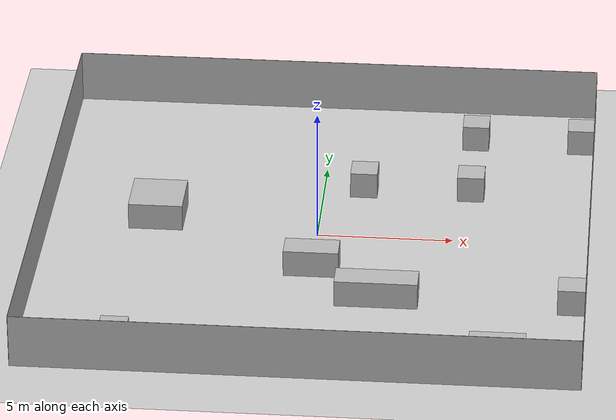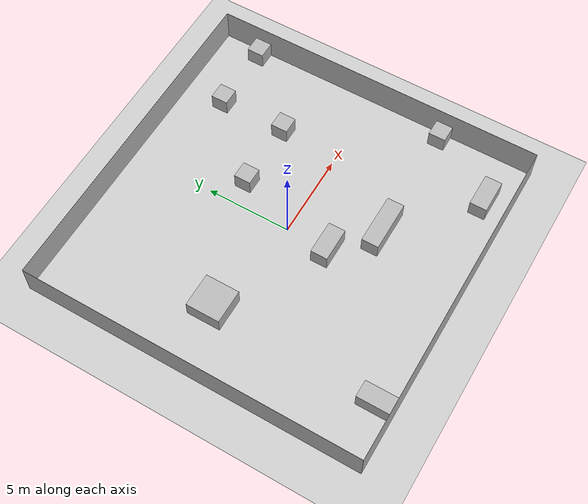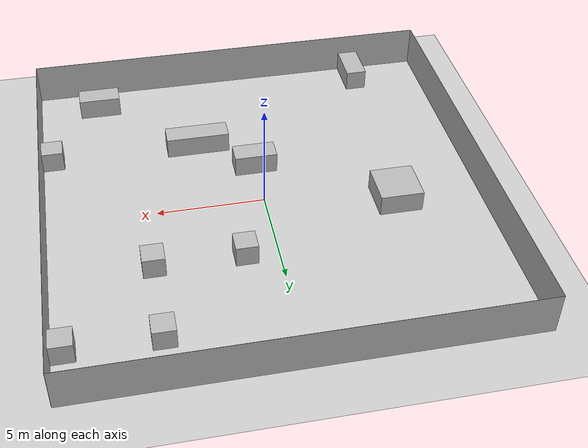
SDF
<sdf version="1.8">
 <world name="default">
  <physics name="1ms" type="ignored">
   <max_step_size>0.001</max_step_size>
   <real_time_factor>1</real_time_factor>
   <real_time_update_rate>1000</real_time_update_rate>
  </physics>
  <plugin name="ignition::gazebo::systems::Physics" filename="ignition-gazebo-physics-system"/>
  <plugin name="ignition::gazebo::systems::UserCommands" filename="ignition-gazebo-user-commands-system"/>
  <plugin name="ignition::gazebo::systems::SceneBroadcaster" filename="ignition-gazebo-scene-broadcaster-system"/>
  <plugin name="ignition::gazebo::systems::Contact" filename="ignition-gazebo-contact-system"/>
  <light name="sun" type="directional">
   <pose>0 0 10 0 -0 0</pose>
   <diffuse>0.8 0.8 0.8 1</diffuse>
   <specular>0.2 0.2 0.2 1</specular>
   <attenuation>
    <range>1000</range>
    <constant>0.90000000000000002</constant>
    <linear>0.01</linear>
    <quadratic>0.001</quadratic>
   </attenuation>
   <direction>-0.5 0.1 -0.9</direction>
   <spot><inner_angle>0</inner_angle><outer_angle>0</outer_angle><falloff>0</falloff></spot>
  </light>
  <gravity>0 0 -9.8</gravity>
  <magnetic_field>6e-06 2.3e-05 -4.2e-05</magnetic_field>
  <atmosphere type="adiabatic"/>
  <scene><ambient>0.4 0.4 0.4 1</ambient><background>0.7 0.7 0.7 1</background><shadows>1</shadows></scene>
  <model name="ground_plane">
   <static>1</static>
   <link name="link">
    <collision name="collision">
     <geometry><plane><normal>0 0 1</normal><size>100 100</size></plane></geometry>
    </collision>
    <visual name="visual">
     <geometry><plane><normal>0 0 1</normal><size>100 100</size></plane></geometry>
     <material>
      <ambient>0.8 0.8 0.8 1</ambient>
      <diffuse>0.8 0.8 0.8 1</diffuse>
      <specular>0.8 0.8 0.8 1</specular>
     </material>
     <plugin name="__default__" filename="__default__"/>
    </visual>
   </link>
   <plugin name="__default__" filename="__default__"/>
  </model>
  <model name="border">
   <pose>0 0 1 0 -0 0</pose>
   <static>1</static>
   <link name="wall1">
    <pose>-10.005 0 0 0 -0 0</pose>
    <collision name="wall1_collision"><geometry><box><size>0.01 20 2</size></box></geometry></collision>
    <visual name="wall1_visual"><geometry><box><size>0.01 20 2</size></box></geometry></visual>
    <static>1</static>
   </link>
   <link name="wall2">
    <pose>10.005 0 0 0 -0 0</pose>
    <collision name="wall2_collision"><geometry><box><size>0.01 20 2</size></box></geometry></collision>
    <visual name="wall2_visual"><geometry><box><size>0.01 20 2</size></box></geometry></visual>
    <static>1</static>
   </link>
   <link name="wall3">
    <pose>0 10.005 0 0 -0 0</pose>
    <collision name="wall3_collision"><geometry><box><size>20 0.01 2</size></box></geometry></collision>
    <visual name="wall3_visual"><geometry><box><size>20 0.01 2</size></box></geometry></visual>
    <static>1</static>
   </link>
   <link name="wall4">
    <pose>0 -10.005 0 0 -0 0</pose>
    <collision name="wall4_collision"><geometry><box><size>20 0.01 2</size></box></geometry></collision>
    <visual name="wall4_visual"><geometry><box><size>20 0.01 2</size></box></geometry></visual>
    <static>1</static>
   </link>
  </model>
  <model name="obstacles">
   <pose>0 0 0.5 0 -0 0</pose>
   <static>1</static>
   <link name="wall1">
    <pose>-6.5 -9 0 0 -0 0</pose>
    <collision name="wall1_collision"><geometry><box><size>1 2 1</size></box></geometry></collision>
    <visual name="wall1_visual"><geometry><box><size>1 2 1</size></box></geometry></visual>
    <static>1</static>
   </link>
   <link name="wall5">
    <pose>7 -8.5 0 0 -0 0</pose>
    <collision name="wall5_collision"><geometry><box><size>2 1 1</size></box></geometry></collision>
    <visual name="wall5_visual"><geometry><box><size>2 1 1</size></box></geometry></visual>
    <static>1</static>
   </link>
   <link name="wall9">
    <pose>-6 1 0 0 -0 0</pose>
    <collision name="wall9_collision"><geometry><box><size>2 2 1</size></box></geometry></collision>
    <visual name="wall9_visual"><geometry><box><size>2 2 1</size></box></geometry></visual>
    <static>1</static>
   </link>
   <link name="wall13">
    <pose>0 -2.5 0 0 -0 0</pose>
    <collision name="wall13_collision"><geometry><box><size>2 1 1</size></box></geometry></collision>
    <visual name="wall13_visual"><geometry><box><size>2 1 1</size></box></geometry></visual>
    <static>1</static>
   </link>
   <link name="wall17">
    <pose>2.5 -4.5 0 0 -0 0</pose>
    <collision name="wall17_collision"><geometry><box><size>3 1 1</size></box></geometry></collision>
    <visual name="wall17_visual"><geometry><box><size>3 1 1</size></box></geometry></visual>
    <static>1</static>
   </link>
   <link name="wall21">
    <pose>9.5 -4.5 0 0 -0 0</pose>
    <collision name="wall21_collision"><geometry><box><size>1 1 1</size></box></geometry></collision>
    <visual name="wall21_visual"><geometry><box><size>1 1 1</size></box></geometry></visual>
    <static>1</static>
   </link>
   <link name="wall25">
    <pose>1.5 3.5 0 0 -0 0</pose>
    <collision name="wall25_collision"><geometry><box><size>1 1 1</size></box></geometry></collision>
    <visual name="wall25_visual"><geometry><box><size>1 1 1</size></box></geometry></visual>
    <static>1</static>
   </link>
   <link name="wall29">
    <pose>5.5 7.5 0 0 -0 0</pose>
    <collision name="wall29_collision"><geometry><box><size>1 1 1</size></box></geometry></collision>
    <visual name="wall29_visual"><geometry><box><size>1 1 1</size></box></geometry></visual>
    <static>1</static>
   </link>
   <link name="wall33">
    <pose>5.5 3.5 0 0 -0 0</pose>
    <collision name="wall33_collision"><geometry><box><size>1 1 1</size></box></geometry></collision>
    <visual name="wall33_visual"><geometry><box><size>1 1 1</size></box></geometry></visual>
    <static>1</static>
   </link>
   <link name="wall37">
    <pose>9.5 7.5 0 0 -0 0</pose>
    <collision name="wall37_collision"><geometry><box><size>1 1 1</size></box></geometry></collision>
    <visual name="wall37_visual"><geometry><box><size>1 1 1</size></box></geometry></visual>
    <static>1</static>
   </link>
  </model>
 </world>
</sdf>
